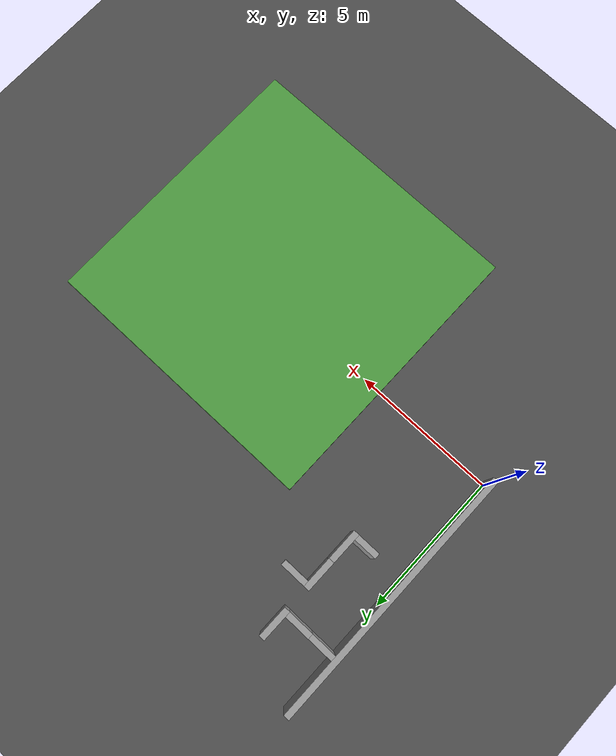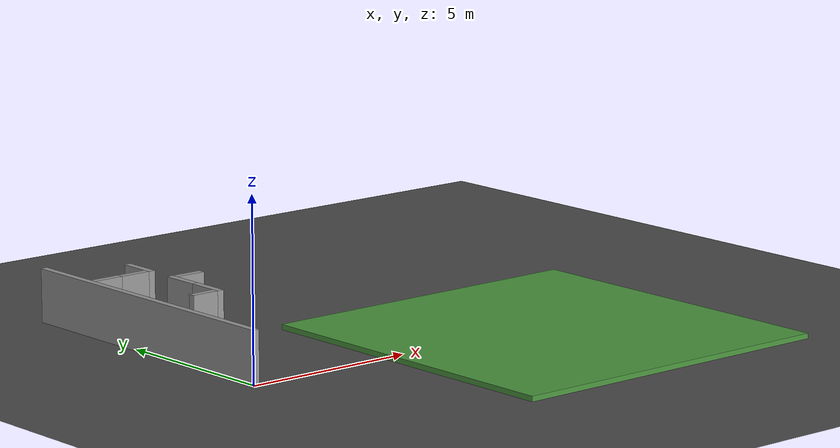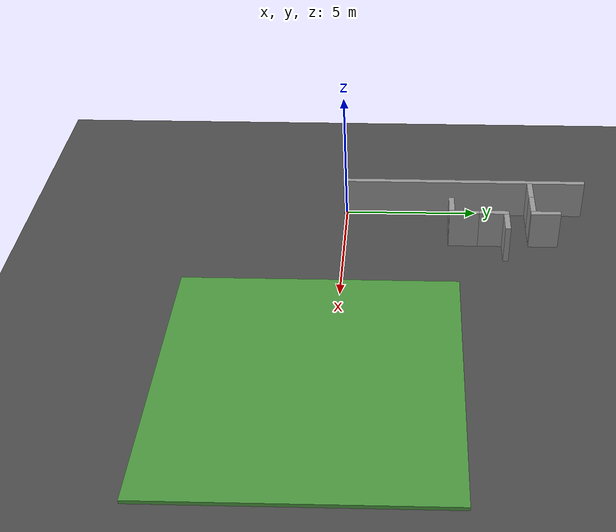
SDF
<sdf version="1.6">
 <world name="default">
  <model name="ground_plane">
   <static>1</static>
   <link name="link">
    <collision name="collision">
     <geometry><plane><normal>0 0 1</normal><size>20 20</size></plane></geometry>
     <surface><friction><ode><mu>100</mu><mu2>50</mu2></ode></friction></surface>
    </collision>
    <visual name="visual">
     <cast_shadows>0</cast_shadows>
     <geometry><plane><normal>0 0 1</normal><size>20 20</size></plane></geometry>
     <material>
      <script>
       <uri>model://asphalt_plane/materials/scripts</uri>
       <uri>model://asphalt_plane/materials/textures</uri>
       <name>vrc/asphalt</name>
      </script>
     </material>
    </visual>
   </link>
  </model>
  <model name="grey_1wall">
   <static>1</static>
   <link name="link">
    <pose>0 0 0.75 0 -0 0</pose>
    <inertial>
     <mass>5</mass>
     <inertia><ixx>1</ixx><ixy>0</ixy><ixz>0</ixz><iyy>1</iyy><iyz>0</iyz><izz>1</izz></inertia>
    </inertial>
    <visual name="ModelPreview_1::link::visual_1">
     <cast_shadows>0</cast_shadows>
     <geometry><box><size>0.9 0.2 1.5</size></box></geometry>
     <material>
      <script>
       <uri>model://grey_wall/materials/scripts</uri>
       <uri>model://grey_wall/materials/textures</uri>
       <name>vrc/grey_wall</name>
      </script>
      <ambient>1 1 1 1</ambient>
      <diffuse>1 1 1 1</diffuse>
      <specular>0 0 0 1</specular>
      <emissive>0 0 0 1</emissive>
      <shader type="vertex"><normal_map>__default__</normal_map></shader>
     </material>
    </visual>
    <collision name="collision">
     <geometry><box><size>0.9 0.2 1.5</size></box></geometry>
     <surface>
      <friction>
       <ode><mu>1</mu><mu2>1</mu2><fdir1>0 0 0</fdir1><slip1>0</slip1><slip2>0</slip2></ode>
       <torsional>
        <coefficient>1</coefficient>
        <patch_radius>0</patch_radius>
        <surface_radius>0</surface_radius>
        <use_patch_radius>1</use_patch_radius>
        <ode><slip>0</slip></ode>
       </torsional>
      </friction>
      <bounce><restitution_coefficient>0</restitution_coefficient><threshold>1e+06</threshold></bounce>
      <contact>
       <collide_without_contact>0</collide_without_contact>
       <collide_without_contact_bitmask>1</collide_without_contact_bitmask>
       <collide_bitmask>1</collide_bitmask>
       <ode>
        <soft_cfm>0</soft_cfm>
        <soft_erp>0.2</soft_erp>
        <kp>1e+13</kp>
        <kd>1</kd>
        <max_vel>0.01</max_vel>
        <min_depth>0</min_depth>
       </ode>
       <bullet>
        <split_impulse>1</split_impulse>
        <split_impulse_penetration_threshold>-0.01</split_impulse_penetration_threshold>
        <soft_cfm>0</soft_cfm>
        <soft_erp>0.2</soft_erp>
        <kp>1e+13</kp>
        <kd>1</kd>
       </bullet>
      </contact>
     </surface>
    </collision>
   </link>
   <static>1</static>
   <pose>2.55 6 0 0 -0 0</pose>
  </model>
  <model name="grey_9wall_1">
   <static>1</static>
   <link name="link">
    <pose>0 0 0.75 0 -0 1.57</pose>
    <inertial>
     <mass>20</mass>
     <inertia><ixx>1</ixx><ixy>0</ixy><ixz>0</ixz><iyy>1</iyy><iyz>0</iyz><izz>1</izz></inertia>
    </inertial>
    <visual name="ModelPreview_1::link::visual_1">
     <cast_shadows>0</cast_shadows>
     <geometry><box><size>9.2 0.2 1.5</size></box></geometry>
     <material>
      <script>
       <uri>model://grey_wall/materials/scripts</uri>
       <uri>model://grey_wall/materials/textures</uri>
       <name>vrc/grey_wall</name>
      </script>
      <ambient>1 1 1 1</ambient>
      <diffuse>1 1 1 1</diffuse>
      <specular>0 0 0 1</specular>
      <emissive>0 0 0 1</emissive>
      <shader type="vertex"><normal_map>__default__</normal_map></shader>
     </material>
    </visual>
    <collision name="collision">
     <geometry><box><size>9.2 0.2 1.5</size></box></geometry>
     <surface>
      <friction>
       <ode><mu>1</mu><mu2>1</mu2><fdir1>0 0 0</fdir1><slip1>0</slip1><slip2>0</slip2></ode>
       <torsional>
        <coefficient>1</coefficient>
        <patch_radius>0</patch_radius>
        <surface_radius>0</surface_radius>
        <use_patch_radius>1</use_patch_radius>
        <ode><slip>0</slip></ode>
       </torsional>
      </friction>
      <bounce><restitution_coefficient>0</restitution_coefficient><threshold>1e+06</threshold></bounce>
      <contact>
       <collide_without_contact>0</collide_without_contact>
       <collide_without_contact_bitmask>1</collide_without_contact_bitmask>
       <collide_bitmask>1</collide_bitmask>
       <ode>
        <soft_cfm>0</soft_cfm>
        <soft_erp>0.2</soft_erp>
        <kp>1e+13</kp>
        <kd>1</kd>
        <max_vel>0.01</max_vel>
        <min_depth>0</min_depth>
       </ode>
       <bullet>
        <split_impulse>1</split_impulse>
        <split_impulse_penetration_threshold>-0.01</split_impulse_penetration_threshold>
        <soft_cfm>0</soft_cfm>
        <soft_erp>0.2</soft_erp>
        <kp>1e+13</kp>
        <kd>1</kd>
       </bullet>
      </contact>
     </surface>
    </collision>
   </link>
   <static>1</static>
   <pose>0 4.5 0 0 -0 0</pose>
  </model>
  <model name="unit_box_lawn">
   <static>1</static>
   <link name="link">
    <pose>14.3617 -5.74416 0 0 -0 0</pose>
    <inertial>
     <mass>10</mass>
     <inertia>
      <ixx>0.166667</ixx>
      <ixy>0</ixy>
      <ixz>0</ixz>
      <iyy>0.166667</iyy>
      <iyz>0</iyz>
      <izz>0.166667</izz>
     </inertia>
    </inertial>
    <visual name="visual">
     <geometry><box><size>10 10 0.25</size></box></geometry>
     <material>
      <script><name>Gazebo/Grass</name><uri>file://media/materials/textures/gazebo.material</uri></script>
      <ambient>0.3 0.3 0.3 1</ambient>
      <diffuse>0.7 0.7 0.7 1</diffuse>
      <specular>0.01 0.01 0.01 1</specular>
      <emissive>0 0 0 1</emissive>
      <shader type="vertex"><normal_map>__default__</normal_map></shader>
     </material>
    </visual>
    <collision name="collision">
     <geometry><box><size>10 10 0.25</size></box></geometry>
     <surface>
      <friction>
       <ode><mu>1</mu><mu2>1</mu2><fdir1>0 0 0</fdir1><slip1>0</slip1><slip2>0</slip2></ode>
       <torsional>
        <coefficient>1</coefficient>
        <patch_radius>0</patch_radius>
        <surface_radius>0</surface_radius>
        <use_patch_radius>1</use_patch_radius>
        <ode><slip>0</slip></ode>
       </torsional>
      </friction>
      <bounce><restitution_coefficient>0</restitution_coefficient><threshold>1e+06</threshold></bounce>
      <contact>
       <collide_without_contact>0</collide_without_contact>
       <collide_without_contact_bitmask>1</collide_without_contact_bitmask>
       <collide_bitmask>1</collide_bitmask>
       <ode>
        <soft_cfm>0</soft_cfm>
        <soft_erp>0.2</soft_erp>
        <kp>1e+13</kp>
        <kd>1</kd>
        <max_vel>0.01</max_vel>
        <min_depth>0</min_depth>
       </ode>
       <bullet>
        <split_impulse>1</split_impulse>
        <split_impulse_penetration_threshold>-0.01</split_impulse_penetration_threshold>
        <soft_cfm>0</soft_cfm>
        <soft_erp>0.2</soft_erp>
        <kp>1e+13</kp>
        <kd>1</kd>
       </bullet>
      </contact>
     </surface>
    </collision>
   </link>
   <static>0</static>
   <pose>-5 5 0.001 0 -0 0</pose>
  </model>
  <model name="grey_1wall_clone_0">
   <static>1</static>
   <link name="link">
    <pose>0 0 0.75 0 -0 0</pose>
    <inertial>
     <mass>5</mass>
     <inertia><ixx>1</ixx><ixy>0</ixy><ixz>0</ixz><iyy>1</iyy><iyz>0</iyz><izz>1</izz></inertia>
    </inertial>
    <visual name="ModelPreview_1::link::visual_1">
     <cast_shadows>0</cast_shadows>
     <geometry><box><size>0.9 0.2 1.5</size></box></geometry>
     <material>
      <script>
       <uri>model://grey_wall/materials/scripts</uri>
       <uri>model://grey_wall/materials/textures</uri>
       <name>vrc/grey_wall</name>
      </script>
      <ambient>1 1 1 1</ambient>
      <diffuse>1 1 1 1</diffuse>
      <specular>0 0 0 1</specular>
      <emissive>0 0 0 1</emissive>
      <shader type="vertex"><normal_map>__default__</normal_map></shader>
     </material>
    </visual>
    <collision name="collision">
     <geometry><box><size>0.9 0.2 1.5</size></box></geometry>
     <surface>
      <friction>
       <ode><mu>1</mu><mu2>1</mu2><fdir1>0 0 0</fdir1><slip1>0</slip1><slip2>0</slip2></ode>
       <torsional>
        <coefficient>1</coefficient>
        <patch_radius>0</patch_radius>
        <surface_radius>0</surface_radius>
        <use_patch_radius>1</use_patch_radius>
        <ode><slip>0</slip></ode>
       </torsional>
      </friction>
      <bounce><restitution_coefficient>0</restitution_coefficient><threshold>1e+06</threshold></bounce>
      <contact>
       <collide_without_contact>0</collide_without_contact>
       <collide_without_contact_bitmask>1</collide_without_contact_bitmask>
       <collide_bitmask>1</collide_bitmask>
       <ode>
        <soft_cfm>0</soft_cfm>
        <soft_erp>0.2</soft_erp>
        <kp>1e+13</kp>
        <kd>1</kd>
        <max_vel>0.01</max_vel>
        <min_depth>0</min_depth>
       </ode>
       <bullet>
        <split_impulse>1</split_impulse>
        <split_impulse_penetration_threshold>-0.01</split_impulse_penetration_threshold>
        <soft_cfm>0</soft_cfm>
        <soft_erp>0.2</soft_erp>
        <kp>1e+13</kp>
        <kd>1</kd>
       </bullet>
      </contact>
     </surface>
    </collision>
   </link>
   <static>1</static>
   <pose>0.55 7 0 0 -0 0</pose>
  </model>
  <model name="grey_1wall_clone_1">
   <static>1</static>
   <link name="link">
    <pose>0 0 0.75 0 -0 0</pose>
    <inertial>
     <mass>5</mass>
     <inertia><ixx>1</ixx><ixy>0</ixy><ixz>0</ixz><iyy>1</iyy><iyz>0</iyz><izz>1</izz></inertia>
    </inertial>
    <visual name="ModelPreview_1::link::visual_1">
     <cast_shadows>0</cast_shadows>
     <geometry><box><size>0.9 0.2 1.5</size></box></geometry>
     <material>
      <script>
       <uri>model://grey_wall/materials/scripts</uri>
       <uri>model://grey_wall/materials/textures</uri>
       <name>vrc/grey_wall</name>
      </script>
      <ambient>1 1 1 1</ambient>
      <diffuse>1 1 1 1</diffuse>
      <specular>0 0 0 1</specular>
      <emissive>0 0 0 1</emissive>
      <shader type="vertex"><normal_map>__default__</normal_map></shader>
     </material>
    </visual>
    <collision name="collision">
     <geometry><box><size>0.9 0.2 1.5</size></box></geometry>
     <surface>
      <friction>
       <ode><mu>1</mu><mu2>1</mu2><fdir1>0 0 0</fdir1><slip1>0</slip1><slip2>0</slip2></ode>
       <torsional>
        <coefficient>1</coefficient>
        <patch_radius>0</patch_radius>
        <surface_radius>0</surface_radius>
        <use_patch_radius>1</use_patch_radius>
        <ode><slip>0</slip></ode>
       </torsional>
      </friction>
      <bounce><restitution_coefficient>0</restitution_coefficient><threshold>1e+06</threshold></bounce>
      <contact>
       <collide_without_contact>0</collide_without_contact>
       <collide_without_contact_bitmask>1</collide_without_contact_bitmask>
       <collide_bitmask>1</collide_bitmask>
       <ode>
        <soft_cfm>0</soft_cfm>
        <soft_erp>0.2</soft_erp>
        <kp>1e+13</kp>
        <kd>1</kd>
        <max_vel>0.01</max_vel>
        <min_depth>0</min_depth>
       </ode>
       <bullet>
        <split_impulse>1</split_impulse>
        <split_impulse_penetration_threshold>-0.01</split_impulse_penetration_threshold>
        <soft_cfm>0</soft_cfm>
        <soft_erp>0.2</soft_erp>
        <kp>1e+13</kp>
        <kd>1</kd>
       </bullet>
      </contact>
     </surface>
    </collision>
   </link>
   <static>1</static>
   <pose>1.45 7 0 0 -0 0</pose>
  </model>
  <model name="grey_1wall_90">
   <static>1</static>
   <link name="link">
    <pose>0 0 0.75 0 -0 0</pose>
    <inertial>
     <mass>5</mass>
     <inertia><ixx>1</ixx><ixy>0</ixy><ixz>0</ixz><iyy>1</iyy><iyz>0</iyz><izz>1</izz></inertia>
    </inertial>
    <visual name="ModelPreview_1::link::visual_1">
     <cast_shadows>0</cast_shadows>
     <geometry><box><size>1.1 0.2 1.5</size></box></geometry>
     <material>
      <script>
       <uri>model://grey_wall/materials/scripts</uri>
       <uri>model://grey_wall/materials/textures</uri>
       <name>vrc/grey_wall</name>
      </script>
      <ambient>1 1 1 1</ambient>
      <diffuse>1 1 1 1</diffuse>
      <specular>0 0 0 1</specular>
      <emissive>0 0 0 1</emissive>
      <shader type="vertex"><normal_map>__default__</normal_map></shader>
     </material>
    </visual>
    <collision name="collision">
     <geometry><box><size>1.1 0.2 1.5</size></box></geometry>
     <surface>
      <friction>
       <ode><mu>1</mu><mu2>1</mu2><fdir1>0 0 0</fdir1><slip1>0</slip1><slip2>0</slip2></ode>
       <torsional>
        <coefficient>1</coefficient>
        <patch_radius>0</patch_radius>
        <surface_radius>0</surface_radius>
        <use_patch_radius>1</use_patch_radius>
        <ode><slip>0</slip></ode>
       </torsional>
      </friction>
      <bounce><restitution_coefficient>0</restitution_coefficient><threshold>1e+06</threshold></bounce>
      <contact>
       <collide_without_contact>0</collide_without_contact>
       <collide_without_contact_bitmask>1</collide_without_contact_bitmask>
       <collide_bitmask>1</collide_bitmask>
       <ode>
        <soft_cfm>0</soft_cfm>
        <soft_erp>0.2</soft_erp>
        <kp>1e+13</kp>
        <kd>1</kd>
        <max_vel>0.01</max_vel>
        <min_depth>0</min_depth>
       </ode>
       <bullet>
        <split_impulse>1</split_impulse>
        <split_impulse_penetration_threshold>-0.01</split_impulse_penetration_threshold>
        <soft_cfm>0</soft_cfm>
        <soft_erp>0.2</soft_erp>
        <kp>1e+13</kp>
        <kd>1</kd>
       </bullet>
      </contact>
     </surface>
    </collision>
   </link>
   <static>1</static>
   <pose>2 7.45 0 0 -0 1.57</pose>
  </model>
  <model name="grey_1wall_90_clone">
   <static>1</static>
   <link name="link">
    <pose>0 0 0.75 0 -0 0</pose>
    <inertial>
     <mass>5</mass>
     <inertia><ixx>1</ixx><ixy>0</ixy><ixz>0</ixz><iyy>1</iyy><iyz>0</iyz><izz>1</izz></inertia>
    </inertial>
    <visual name="ModelPreview_1::link::visual_1">
     <cast_shadows>0</cast_shadows>
     <geometry><box><size>1.1 0.2 1.5</size></box></geometry>
     <material>
      <script>
       <uri>model://grey_wall/materials/scripts</uri>
       <uri>model://grey_wall/materials/textures</uri>
       <name>vrc/grey_wall</name>
      </script>
      <ambient>1 1 1 1</ambient>
      <diffuse>1 1 1 1</diffuse>
      <specular>0 0 0 1</specular>
      <emissive>0 0 0 1</emissive>
      <shader type="vertex"><normal_map>__default__</normal_map></shader>
     </material>
    </visual>
    <collision name="collision">
     <geometry><box><size>1.1 0.2 1.5</size></box></geometry>
     <surface>
      <friction>
       <ode><mu>1</mu><mu2>1</mu2><fdir1>0 0 0</fdir1><slip1>0</slip1><slip2>0</slip2></ode>
       <torsional>
        <coefficient>1</coefficient>
        <patch_radius>0</patch_radius>
        <surface_radius>0</surface_radius>
        <use_patch_radius>1</use_patch_radius>
        <ode><slip>0</slip></ode>
       </torsional>
      </friction>
      <bounce><restitution_coefficient>0</restitution_coefficient><threshold>1e+06</threshold></bounce>
      <contact>
       <collide_without_contact>0</collide_without_contact>
       <collide_without_contact_bitmask>1</collide_without_contact_bitmask>
       <collide_bitmask>1</collide_bitmask>
       <ode>
        <soft_cfm>0</soft_cfm>
        <soft_erp>0.2</soft_erp>
        <kp>1e+13</kp>
        <kd>1</kd>
        <max_vel>0.01</max_vel>
        <min_depth>0</min_depth>
       </ode>
       <bullet>
        <split_impulse>1</split_impulse>
        <split_impulse_penetration_threshold>-0.01</split_impulse_penetration_threshold>
        <soft_cfm>0</soft_cfm>
        <soft_erp>0.2</soft_erp>
        <kp>1e+13</kp>
        <kd>1</kd>
       </bullet>
      </contact>
     </surface>
    </collision>
   </link>
   <static>1</static>
   <pose>2 5.55 0 0 -0 1.57</pose>
  </model>
  <model name="grey_1wall_90_clone_0">
   <static>1</static>
   <link name="link">
    <pose>0 0 0.75 0 -0 0</pose>
    <inertial>
     <mass>5</mass>
     <inertia><ixx>1</ixx><ixy>0</ixy><ixz>0</ixz><iyy>1</iyy><iyz>0</iyz><izz>1</izz></inertia>
    </inertial>
    <visual name="ModelPreview_1::link::visual_1">
     <cast_shadows>0</cast_shadows>
     <geometry><box><size>1.1 0.2 1.5</size></box></geometry>
     <material>
      <script>
       <uri>model://grey_wall/materials/scripts</uri>
       <uri>model://grey_wall/materials/textures</uri>
       <name>vrc/grey_wall</name>
      </script>
      <ambient>1 1 1 1</ambient>
      <diffuse>1 1 1 1</diffuse>
      <specular>0 0 0 1</specular>
      <emissive>0 0 0 1</emissive>
      <shader type="vertex"><normal_map>__default__</normal_map></shader>
     </material>
    </visual>
    <collision name="collision">
     <geometry><box><size>1.1 0.2 1.5</size></box></geometry>
     <surface>
      <friction>
       <ode><mu>1</mu><mu2>1</mu2><fdir1>0 0 0</fdir1><slip1>0</slip1><slip2>0</slip2></ode>
       <torsional>
        <coefficient>1</coefficient>
        <patch_radius>0</patch_radius>
        <surface_radius>0</surface_radius>
        <use_patch_radius>1</use_patch_radius>
        <ode><slip>0</slip></ode>
       </torsional>
      </friction>
      <bounce><restitution_coefficient>0</restitution_coefficient><threshold>1e+06</threshold></bounce>
      <contact>
       <collide_without_contact>0</collide_without_contact>
       <collide_without_contact_bitmask>1</collide_without_contact_bitmask>
       <collide_bitmask>1</collide_bitmask>
       <ode>
        <soft_cfm>0</soft_cfm>
        <soft_erp>0.2</soft_erp>
        <kp>1e+13</kp>
        <kd>1</kd>
        <max_vel>0.01</max_vel>
        <min_depth>0</min_depth>
       </ode>
       <bullet>
        <split_impulse>1</split_impulse>
        <split_impulse_penetration_threshold>-0.01</split_impulse_penetration_threshold>
        <soft_cfm>0</soft_cfm>
        <soft_erp>0.2</soft_erp>
        <kp>1e+13</kp>
        <kd>1</kd>
       </bullet>
      </contact>
     </surface>
    </collision>
   </link>
   <static>1</static>
   <pose>2 4.45 0 0 -0 1.57</pose>
  </model>
  <model name="grey_1wall_clone_clone_1">
   <static>1</static>
   <link name="link">
    <pose>0 0 0.75 0 -0 0</pose>
    <inertial>
     <mass>5</mass>
     <inertia><ixx>1</ixx><ixy>0</ixy><ixz>0</ixz><iyy>1</iyy><iyz>0</iyz><izz>1</izz></inertia>
    </inertial>
    <visual name="ModelPreview_1::link::visual_1">
     <cast_shadows>0</cast_shadows>
     <geometry><box><size>0.8 0.2 1.5</size></box></geometry>
     <material>
      <script>
       <uri>model://grey_wall/materials/scripts</uri>
       <uri>model://grey_wall/materials/textures</uri>
       <name>vrc/grey_wall</name>
      </script>
      <ambient>1 1 1 1</ambient>
      <diffuse>1 1 1 1</diffuse>
      <specular>0 0 0 1</specular>
      <emissive>0 0 0 1</emissive>
      <shader type="vertex"><normal_map>__default__</normal_map></shader>
     </material>
    </visual>
    <collision name="collision">
     <geometry><box><size>0.8 0.2 1.5</size></box></geometry>
     <surface>
      <friction>
       <ode><mu>1</mu><mu2>1</mu2><fdir1>0 0 0</fdir1><slip1>0</slip1><slip2>0</slip2></ode>
       <torsional>
        <coefficient>1</coefficient>
        <patch_radius>0</patch_radius>
        <surface_radius>0</surface_radius>
        <use_patch_radius>1</use_patch_radius>
        <ode><slip>0</slip></ode>
       </torsional>
      </friction>
      <bounce><restitution_coefficient>0</restitution_coefficient><threshold>1e+06</threshold></bounce>
      <contact>
       <collide_without_contact>0</collide_without_contact>
       <collide_without_contact_bitmask>1</collide_without_contact_bitmask>
       <collide_bitmask>1</collide_bitmask>
       <ode>
        <soft_cfm>0</soft_cfm>
        <soft_erp>0.2</soft_erp>
        <kp>1e+13</kp>
        <kd>1</kd>
        <max_vel>0.01</max_vel>
        <min_depth>0</min_depth>
       </ode>
       <bullet>
        <split_impulse>1</split_impulse>
        <split_impulse_penetration_threshold>-0.01</split_impulse_penetration_threshold>
        <soft_cfm>0</soft_cfm>
        <soft_erp>0.2</soft_erp>
        <kp>1e+13</kp>
        <kd>1</kd>
       </bullet>
      </contact>
     </surface>
    </collision>
   </link>
   <static>1</static>
   <pose>1.5 4 0 0 -0 0</pose>
  </model>
 </world>
</sdf>
